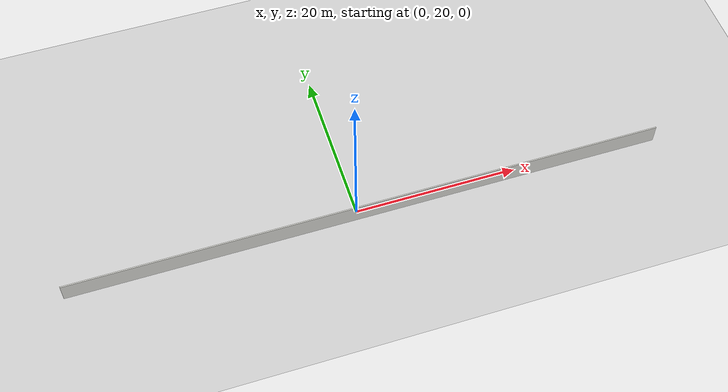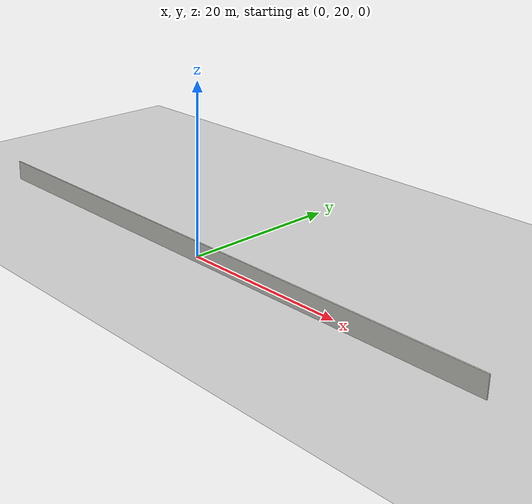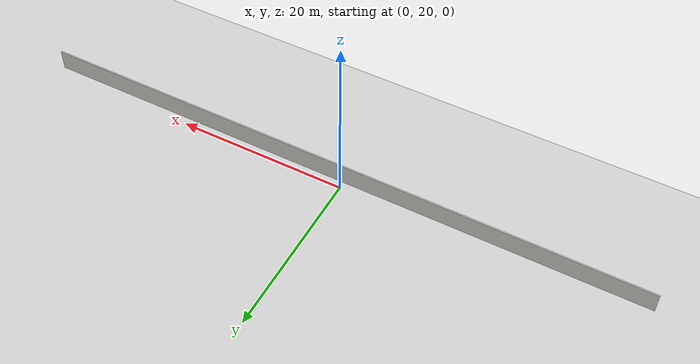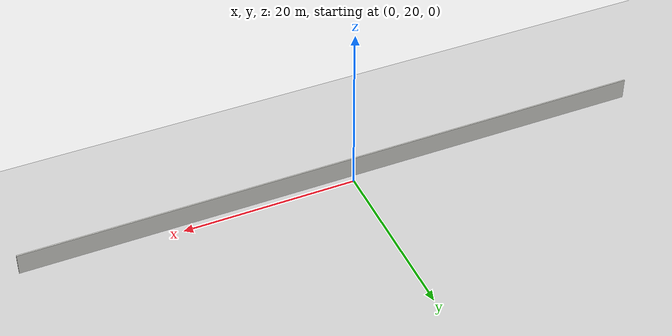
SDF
<sdf version="1.6">
 <world name="default">
  <model name="ground_plane">
   <static>1</static>
   <link name="link">
    <collision name="collision">
     <geometry><plane><normal>0 0 1</normal><size>100 100</size></plane></geometry>
     <surface><friction><ode><mu>100</mu><mu2>50</mu2></ode></friction></surface>
    </collision>
    <visual name="visual">
     <cast_shadows>0</cast_shadows>
     <geometry><plane><normal>0 0 1</normal><size>100 100</size></plane></geometry>
     <material>
      <script><uri>file://media/materials/scripts/gazebo.material</uri><name>Gazebo/Grey</name></script>
     </material>
    </visual>
   </link>
  </model>
  <model name="floor">
   <link name="Wall_12">
    <pose>0.125 20.3 0 0 -0 3.14159</pose>
    <visual name="Wall_12_Visual">
     <pose>0 0 1.25 0 -0 0</pose>
     <geometry><box><size>73 0.15 2.5</size></box></geometry>
     <material>
      <script><uri>file://media/materials/scripts/gazebo.material</uri><name>Gazebo/CeilingTiled</name></script>
      <ambient>0.760784 0.662745 0.627451 1</ambient>
     </material>
     <meta><layer>0</layer></meta>
    </visual>
    <collision name="Wall_12_Collision">
     <pose>0 0 1.25 0 -0 0</pose>
     <geometry><box><size>73 0.15 2.5</size></box></geometry>
     <surface>
      <friction>
       <ode><mu>1</mu><mu2>1</mu2><fdir1>0 0 0</fdir1><slip1>0</slip1><slip2>0</slip2></ode>
       <torsional>
        <coefficient>1</coefficient>
        <patch_radius>0</patch_radius>
        <surface_radius>0</surface_radius>
        <use_patch_radius>1</use_patch_radius>
        <ode><slip>0</slip></ode>
       </torsional>
      </friction>
      <bounce><restitution_coefficient>0</restitution_coefficient><threshold>1e+06</threshold></bounce>
      <contact>
       <collide_without_contact>0</collide_without_contact>
       <collide_without_contact_bitmask>1</collide_without_contact_bitmask>
       <collide_bitmask>1</collide_bitmask>
       <ode>
        <soft_cfm>0</soft_cfm>
        <soft_erp>0.2</soft_erp>
        <kp>1e+13</kp>
        <kd>1</kd>
        <max_vel>0.01</max_vel>
        <min_depth>0</min_depth>
       </ode>
       <bullet>
        <split_impulse>1</split_impulse>
        <split_impulse_penetration_threshold>-0.01</split_impulse_penetration_threshold>
        <soft_cfm>0</soft_cfm>
        <soft_erp>0.2</soft_erp>
        <kp>1e+13</kp>
        <kd>1</kd>
       </bullet>
      </contact>
     </surface>
    </collision>
   </link>
   <static>1</static>
   <pose>1.26361 -1.27025 0 0 -0 0</pose>
  </model>
 </world>
</sdf>
